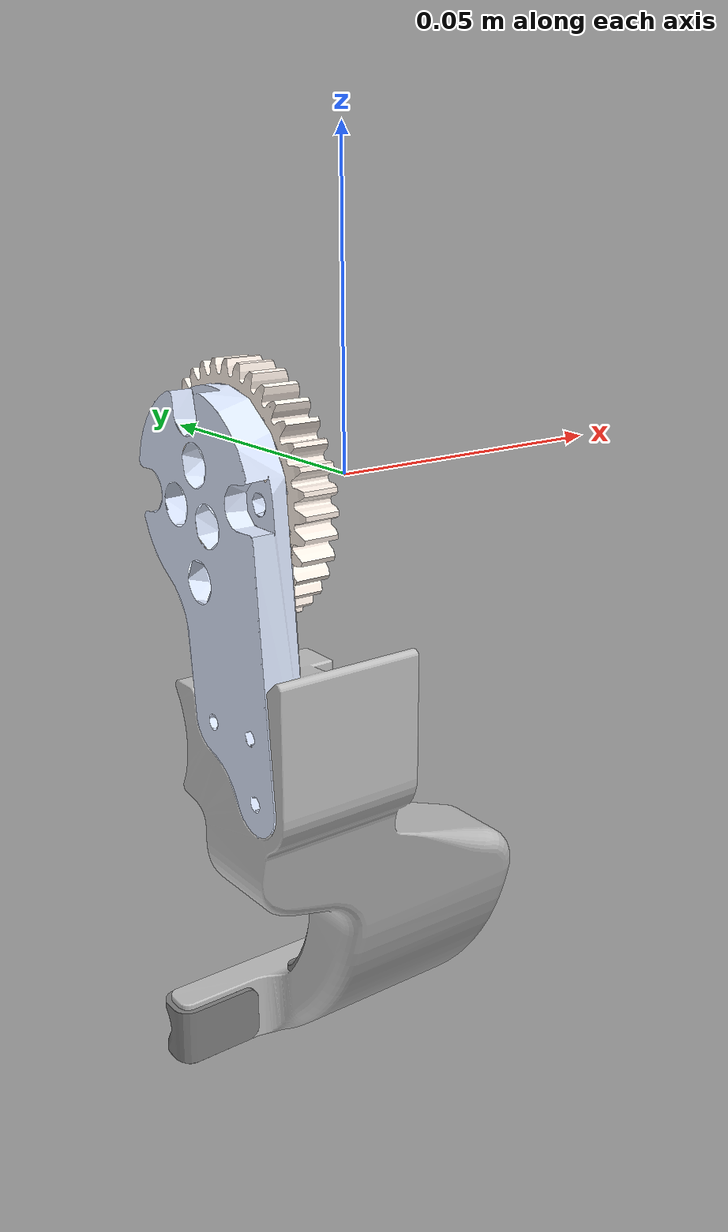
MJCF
<mujoco model="finger_outter_obj">
  <asset>
    <mesh name="finger_outter_00" file="finger_outter_00.obj"/>
    <mesh name="finger_outter_01" file="finger_outter_01.obj"/>
    <mesh name="finger_outter_02" file="finger_outter_02.obj"/>
    <mesh name="finger_outter_03" file="finger_outter_03.obj"/>
    <material name="finger_outter_00_mat" rgba="1.000000 0.949020 0.909804 1.000000"/>
    <material name="finger_outter_01_mat" rgba="0.501961 0.501961 0.501961 1.000000"/>
    <material name="finger_outter_02_mat" rgba="0.752941 0.752941 0.752941 1.000000"/>
    <material name="finger_outter_03_mat" rgba="0.866667 0.909804 1.000000 1.000000"/>
  </asset>
  <worldbody>
    <body name="finger_outter_obj">
      <geom type="mesh" mesh="finger_outter_00" material="finger_outter_00_mat" contype="0" conaffinity="0" group="1"/>
      <geom type="mesh" mesh="finger_outter_01" material="finger_outter_01_mat" contype="0" conaffinity="0" group="1"/>
      <geom type="mesh" mesh="finger_outter_02" material="finger_outter_02_mat" contype="0" conaffinity="0" group="1"/>
      <geom type="mesh" mesh="finger_outter_03" material="finger_outter_03_mat" contype="0" conaffinity="0" group="1"/>
    </body>
  </worldbody>
</mujoco>
